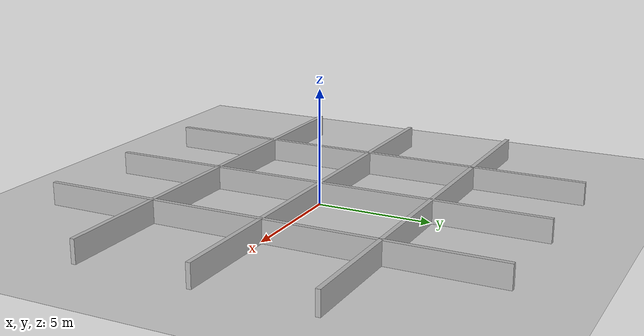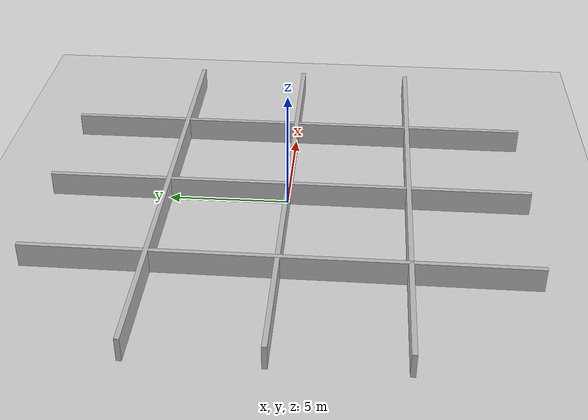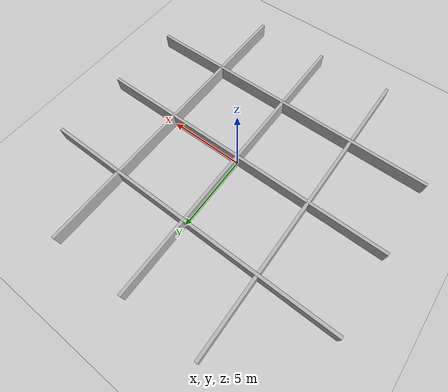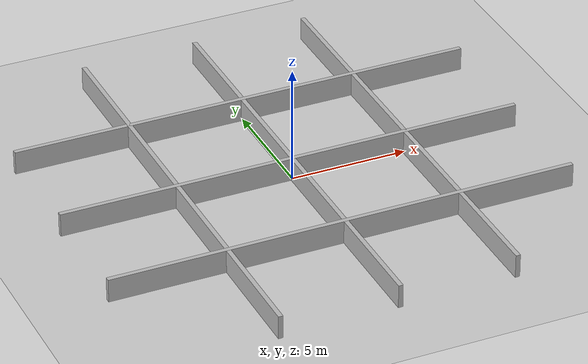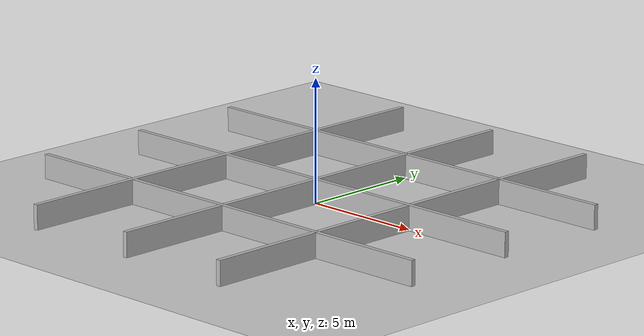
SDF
<?xml version="1.0" ?>
<sdf version='1.7'>
  <world name='grid_layout_world'>
    <plugin
      name="gz::sim::systems::Physics"
      filename="gz-sim-physics-system">
    </plugin>
    <plugin
      name="gz::sim::systems::UserCommands"
      filename="gz-sim-user-commands-system">
    </plugin>
    <plugin
      name="gz::sim::systems::SceneBroadcaster"
      filename="gz-sim-scene-broadcaster-system">
    </plugin>

    <light name='sun' type='directional'>
      <cast_shadows>true</cast_shadows>
      <pose>0 0 10 0 0 0</pose>
      <diffuse>0.8 0.8 0.8 1</diffuse>
      <specular>0.2 0.2 0.2 1</specular>
      <attenuation>
        <range>1000</range>
        <constant>0.9</constant>
        <linear>0.01</linear>
        <quadratic>0.001</quadratic>
      </attenuation>
      <direction>-0.5 0.1 -0.9</direction>
    </light>

    <model name='ground_plane'>
      <static>true</static>
      <link name='link'>
        <collision name='collision'>
          <geometry>
            <plane>
              <normal>0 0 1</normal>
              <size>100 100</size>
            </plane>
          </geometry>
        </collision>
        <visual name='visual'>
          <geometry>
            <plane>
              <normal>0 0 1</normal>
              <size>100 100</size>
            </plane>
          </geometry>
          <material>
            <ambient>0.8 0.8 0.8 1</ambient>
            <diffuse>0.8 0.8 0.8 1</diffuse>
            <specular>0.8 0.8 0.8 1</specular>
          </material>
        </visual>
      </link>
    </model>

    <model name='grid_walls'>
      <pose>0 0 0 0 0 0</pose>
      <static>true</static>

      <link name='wall_h1'>
        <pose>0 5 0.5 0 0 0</pose>
        <visual name='visual'>
          <geometry><box><size>20 0.2 1</size></box></geometry>
        </visual>
        <collision name='collision'>
          <geometry><box><size>20 0.2 1</size></box></geometry>
        </collision>
      </link>
      <link name='wall_h2'>
        <pose>0 0 0.5 0 0 0</pose>
        <visual name='visual'>
          <geometry><box><size>20 0.2 1</size></box></geometry>
        </visual>
        <collision name='collision'>
          <geometry><box><size>20 0.2 1</size></box></geometry>
        </collision>
      </link>
      <link name='wall_h3'>
        <pose>0 -5 0.5 0 0 0</pose>
        <visual name='visual'>
          <geometry><box><size>20 0.2 1</size></box></geometry>
        </visual>
        <collision name='collision'>
          <geometry><box><size>20 0.2 1</size></box></geometry>
        </collision>
      </link>

      <link name='wall_v1'>
        <pose>5 0 0.5 0 0 1.5707</pose>
        <visual name='visual'>
          <geometry><box><size>20 0.2 1</size></box></geometry>
        </visual>
        <collision name='collision'>
          <geometry><box><size>20 0.2 1</size></box></geometry>
        </collision>
      </link>
      <link name='wall_v2'>
        <pose>0 0 0.5 0 0 1.5707</pose>
        <visual name='visual'>
          <geometry><box><size>20 0.2 1</size></box></geometry>
        </visual>
        <collision name='collision'>
          <geometry><box><size>20 0.2 1</size></box></geometry>
        </collision>
      </link>
      <link name='wall_v3'>
        <pose>-5 0 0.5 0 0 1.5707</pose>
        <visual name='visual'>
          <geometry><box><size>20 0.2 1</size></box></geometry>
        </visual>
        <collision name='collision'>
          <geometry><box><size>20 0.2 1</size></box></geometry>
        </collision>
      </link>
    </model>
  </world>
</sdf>
